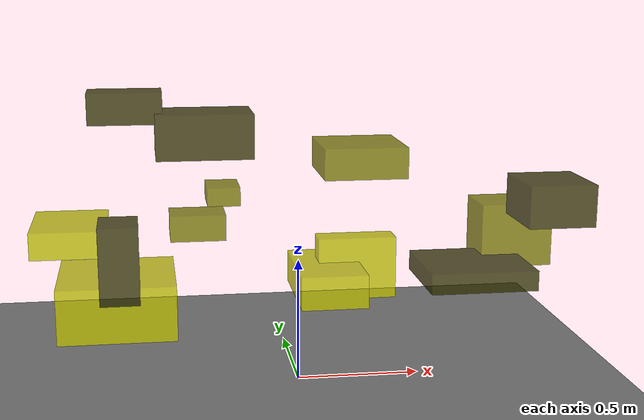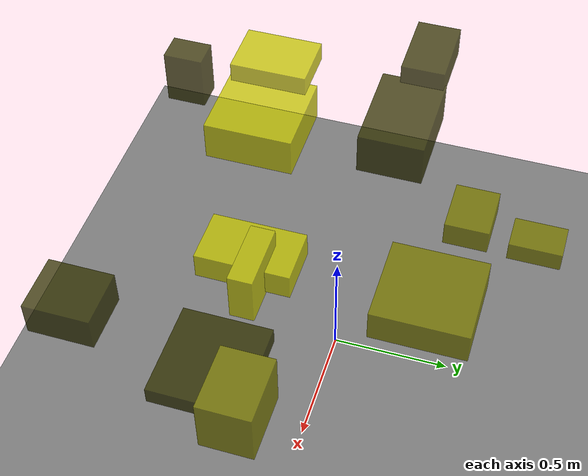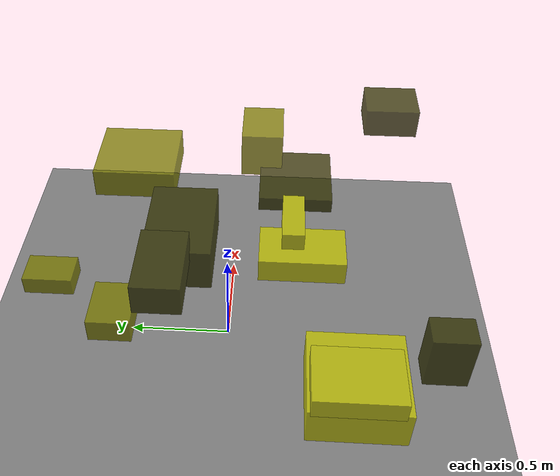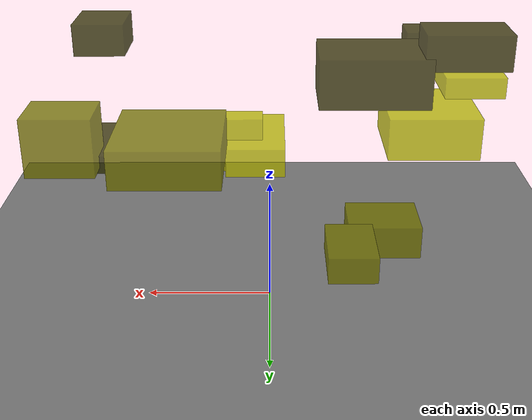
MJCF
<?xml version="1.0"?>
<mujoco model="obstacle_scene">
  <compiler angle="radian" coordinate="local"/>
  <option timestep="0.001" gravity="0 0 -9.81"/>

  <asset>
    <material name="obstacle_mat" rgba="0.8 0.8 0.0 0.8"/>
    <material name="ground_mat" rgba="0.5 0.5 0.5 1"/>
  </asset>

  <worldbody>
    <!-- Ground plane -->
    <geom name="ground" type="plane" size="3 3 0.1" material="ground_mat"/>

    <!-- Obstacles -->
    <body name="obstacle_0" pos="-0.673093 0.190732 1.109826">
      <geom name="obs_0" type="box" size="0.147581 0.088623 0.062816" rgba="0.2 0.2 0.0 0.8"/>
    </body>
    <body name="obstacle_1" pos="-0.248995 0.769594 0.629790">
      <geom name="obs_1" type="box" size="0.074526 0.108758 0.041975" rgba="0.5 0.5 0.0 0.8"/>
    </body>
    <body name="obstacle_2" pos="-0.862103 -0.538797 0.767522">
      <geom name="obs_2" type="box" size="0.126901 0.173442 0.045494" rgba="0.8 0.8 0.0 0.8"/>
    </body>
    <body name="obstacle_3" pos="-0.363038 0.154588 1.001902">
      <geom name="obs_3" type="box" size="0.193862 0.131514 0.089329" rgba="0.2 0.2 0.0 0.8"/>
    </body>
    <body name="obstacle_4" pos="-0.381020 0.477736 0.553310">
      <geom name="obs_4" type="box" size="0.119657 0.094504 0.055900" rgba="0.5 0.5 0.0 0.8"/>
    </body>
    <body name="obstacle_5" pos="0.059374 -0.352659 0.522228">
      <geom name="obs_5" type="box" size="0.121405 0.205147 0.060792" rgba="0.8 0.8 0.0 0.8"/>
    </body>
    <body name="obstacle_6" pos="0.759571 -0.782952 0.891878">
      <geom name="obs_6" type="box" size="0.113544 0.129238 0.071027" rgba="0.2 0.2 0.0 0.8"/>
    </body>
    <body name="obstacle_7" pos="0.329401 0.442158 0.839038">
      <geom name="obs_7" type="box" size="0.179379 0.187333 0.066742" rgba="0.5 0.5 0.0 0.8"/>
    </body>
    <body name="obstacle_8" pos="0.175670 -0.306631 0.556204">
      <geom name="obs_8" type="box" size="0.145477 0.052557 0.115684" rgba="0.8 0.8 0.0 0.8"/>
    </body>
    <body name="obstacle_9" pos="0.629272 -0.320522 0.522985">
      <geom name="obs_9" type="box" size="0.202188 0.187419 0.037862" rgba="0.2 0.2 0.0 0.8"/>
    </body>
    <body name="obstacle_10" pos="0.828484 -0.138086 0.633962">
      <geom name="obs_10" type="box" size="0.139449 0.107941 0.122604" rgba="0.5 0.5 0.0 0.8"/>
    </body>
    <body name="obstacle_11" pos="-0.709762 -0.564877 0.536043">
      <geom name="obs_11" type="box" size="0.199347 0.203255 0.094131" rgba="0.8 0.8 0.0 0.8"/>
    </body>
    <body name="obstacle_12" pos="-0.693101 -0.892290 0.759220">
      <geom name="obs_12" type="box" size="0.062779 0.086444 0.124669" rgba="0.2 0.2 0.0 0.8"/>
    </body>
  </worldbody>
</mujoco>
